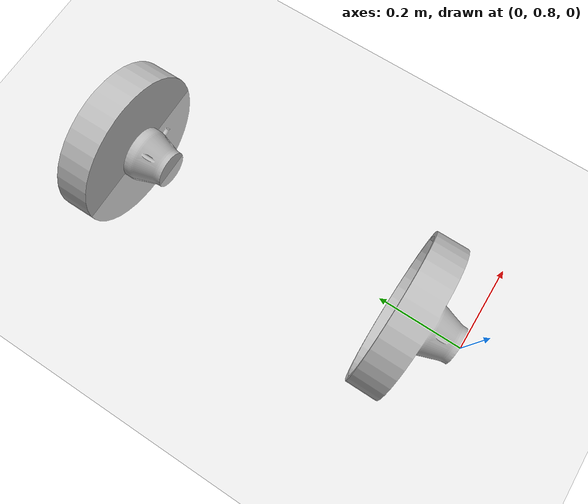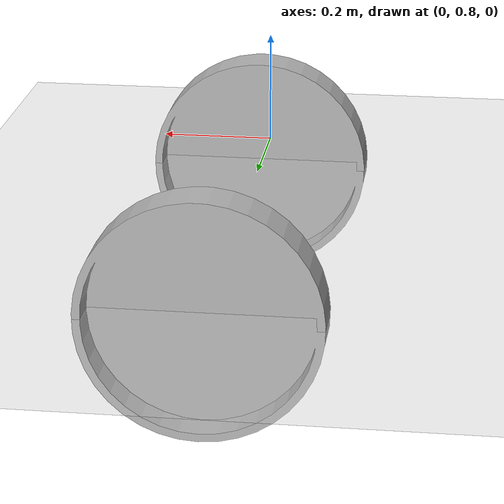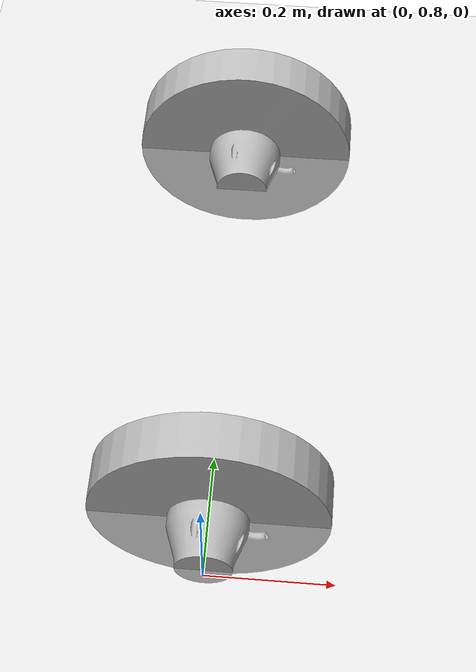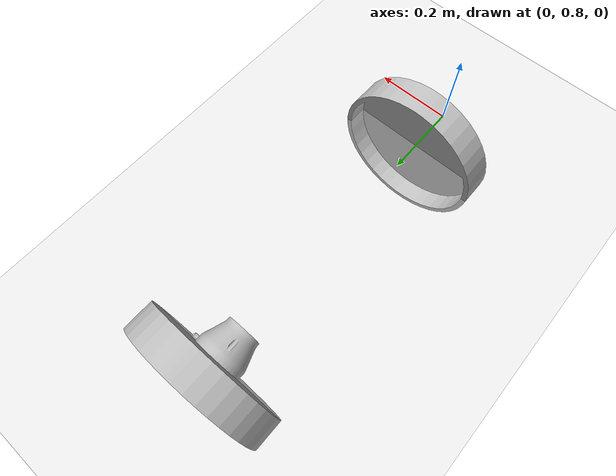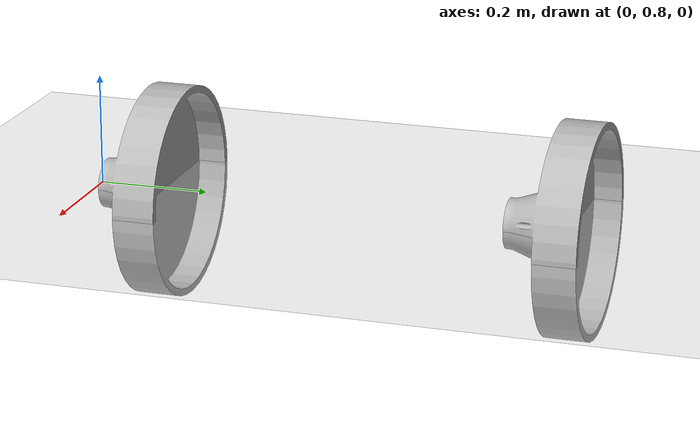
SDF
<sdf version="1.7">
 <world name="default">
  <model name="ground_plane">
   <static>1</static>
   <link name="link">
    <collision name="collision">
     <geometry><plane><normal>0 0 1</normal><size>100 100</size></plane></geometry>
     <surface><friction><ode><mu>100</mu><mu2>50</mu2></ode></friction></surface>
    </collision>
    <visual name="visual">
     <cast_shadows>0</cast_shadows>
     <geometry><plane><normal>0 0 1</normal><size>100 100</size></plane></geometry>
     <material>
      <script><uri>file://media/materials/scripts/gazebo.material</uri><name>Gazebo/Grey</name></script>
     </material>
    </visual>
   </link>
  </model>
  <light name="sun" type="directional">
   <pose>0 0 10 0 -0 0</pose>
   <diffuse>0.8 0.8 0.8 1</diffuse>
   <specular>0.2 0.2 0.2 1</specular>
   <attenuation>
    <range>1000</range>
    <constant>0.9</constant>
    <linear>0.01</linear>
    <quadratic>0.001</quadratic>
   </attenuation>
   <direction>-0.5 0.1 -0.9</direction>
   <spot><inner_angle>0</inner_angle><outer_angle>0</outer_angle><falloff>0</falloff></spot>
  </light>
  <scene><shadows>0</shadows><ambient>0.4 0.4 0.4 1</ambient><background>0.7 0.7 0.7 1</background></scene>
  <physics type="ode">
   <real_time_update_rate>1000</real_time_update_rate>
   <max_step_size>0.001</max_step_size>
   <real_time_factor>1</real_time_factor>
   <ode>
    <solver>
     <type>quick</type>
     <iters>150</iters>
     <precon_iters>0</precon_iters>
     <sor>1.4</sor>
     <use_dynamic_moi_rescaling>1</use_dynamic_moi_rescaling>
    </solver>
    <constraints>
     <cfm>1e-05</cfm>
     <erp>0.2</erp>
     <contact_max_correcting_vel>2000</contact_max_correcting_vel>
     <contact_surface_layer>0.01</contact_surface_layer>
    </constraints>
   </ode>
  </physics>
  <gravity>0 0 -9.8</gravity>
  <magnetic_field>6e-06 2.3e-05 -4.2e-05</magnetic_field>
  <atmosphere type="adiabatic"/>
  <spherical_coordinates>
   <surface_model>EARTH_WGS84</surface_model>
   <latitude_deg>0</latitude_deg>
   <longitude_deg>0</longitude_deg>
   <elevation>0</elevation>
   <heading_deg>0</heading_deg>
  </spherical_coordinates>
  <model name="pickup_obj">
   <link name="base_link">
    <inertial>
     <mass>0.01258</mass>
     <inertia>
      <ixx>0.0024432</ixx>
      <ixy>1.7365e-36</ixy>
      <ixz>-1.5705e-19</ixz>
      <iyy>0.0024432</iyy>
      <iyz>-1.7628e-35</iyz>
      <izz>0.0024432</izz>
     </inertia>
    </inertial>
    <collision name="base_link_collision">
     <geometry><mesh><scale>1 1 1</scale><uri>model://pickup_obj/meshes/base_link.STL</uri></mesh></geometry>
    </collision>
    <visual name="base_link_visual">
     <geometry><mesh><scale>1 1 1</scale><uri>model://pickup_obj/meshes/base_link.STL</uri></mesh></geometry>
    </visual>
   </link>
   <pose>-0 1 -9e-06 1.57079 -0 -0.001001</pose>
  </model>
  <model name="pickup_obj_0">
   <link name="base_link">
    <inertial>
     <mass>0.01258</mass>
     <inertia>
      <ixx>0.0024432</ixx>
      <ixy>1.7365e-36</ixy>
      <ixz>-1.5705e-19</ixz>
      <iyy>0.0024432</iyy>
      <iyz>-1.7628e-35</iyz>
      <izz>0.0024432</izz>
     </inertia>
    </inertial>
    <collision name="base_link_collision">
     <geometry><mesh><scale>1 1 1</scale><uri>model://pickup_obj/meshes/base_link.STL</uri></mesh></geometry>
    </collision>
    <visual name="base_link_visual">
     <geometry><mesh><scale>1 1 1</scale><uri>model://pickup_obj/meshes/base_link.STL</uri></mesh></geometry>
    </visual>
   </link>
   <pose>-0 1.75 0 1.5708 4e-06 0</pose>
  </model>
 </world>
</sdf>
